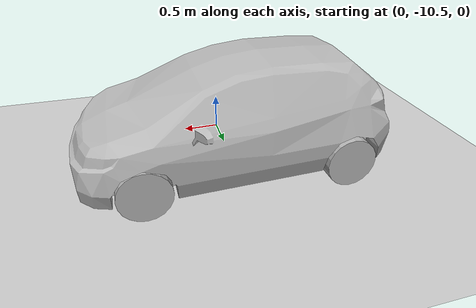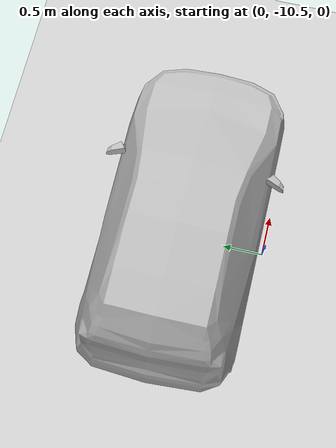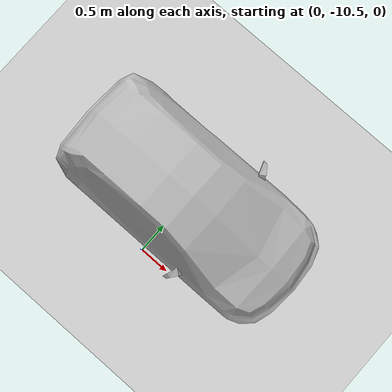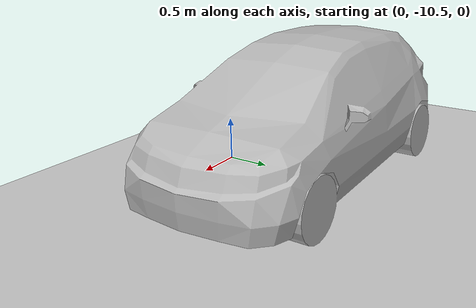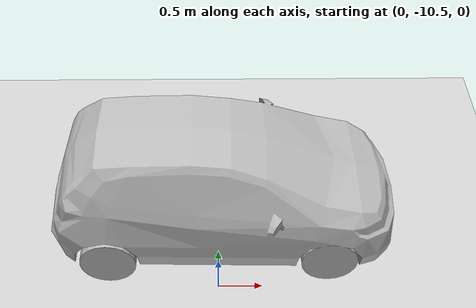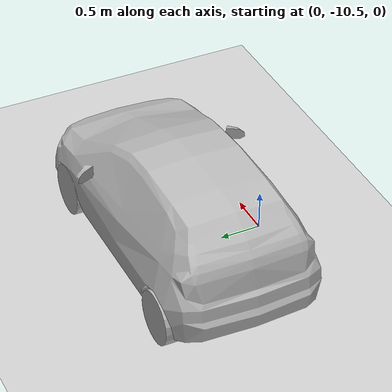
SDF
<?xml version="1.0"?>
<sdf version="1.6">
  <world name="default">
    <plugin
      filename="gz-sim-physics-system"
      name="gz::sim::systems::Physics">
    </plugin>
    <plugin
      filename="gz-sim-user-commands-system"
      name="gz::sim::systems::UserCommands">
    </plugin>
    <plugin
      filename="gz-sim-scene-broadcaster-system"
      name="gz::sim::systems::SceneBroadcaster">
    </plugin>
    <plugin
      filename="gz-sim-sensors-system"
      name="gz::sim::systems::Sensors">
      <render_engine>ogre2</render_engine>
    </plugin>
    <plugin
      filename="gz-sim-imu-system"
      name="gz::sim::systems::Imu">
    </plugin>

    <include>
      <uri>
        https://fuel.gazebosim.org/1.0/OpenRobotics/models/Ground Plane
      </uri>
    </include>

    <include>
      <uri>
        https://fuel.gazebosim.org/1.0/OpenRobotics/models/Sun
      </uri>
    </include>

    <scene>
      <ambient>0.5 0.5 0.5 1.0</ambient>
      <background>0.5 0.5 0.5 1.0</background>
      <grid>true</grid>
      <shadow>false</shadow>
    </scene>

    <gui fullscreen='0'>
      <camera name='user_camera'>
        <pose frame=''>0.319654 -0.235002 9.29441 0 1.5138 0.009599</pose>
        <view_controller>orbit</view_controller>
        <projection_type>perspective</projection_type>
      </camera>
    </gui>

    <physics type="ode">
      <real_time_update_rate>1000.0</real_time_update_rate>
      <max_step_size>0.001</max_step_size>
      <real_time_factor>1</real_time_factor>
      <ode>
        <solver>
          <type>quick</type>
          <iters>150</iters>
          <precon_iters>0</precon_iters>
          <sor>1.400000</sor>
          <use_dynamic_moi_rescaling>1</use_dynamic_moi_rescaling>
        </solver>
        <constraints>
          <cfm>0.00001</cfm>
          <erp>0.2</erp>
          <contact_max_correcting_vel>2000.000000</contact_max_correcting_vel>
          <contact_surface_layer>0.01000</contact_surface_layer>
        </constraints>
      </ode>
    </physics>

    <model name='Hatchback'>
      <include>
        <uri>model://hatchback_blue</uri>
      </include>
      <pose>-0.276098 -9.481944 0.023266 0 0 0</pose>
      <static>true</static>
    </model>
  </world>
</sdf>

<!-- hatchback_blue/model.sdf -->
<sdf version="1.6">
  <model name="hatchback_blue">
    <link name="link">
      <collision name="collision">
        <pose>0 0 0 0 0 1.57079632679</pose>
        <geometry>
          <mesh>
            <scale>0.0254 0.0254 0.0254</scale>
            <uri>model://hatchback_blue/meshes/hatchback.obj</uri>
          </mesh>
        </geometry>
      </collision>
      <visual name="visual">
        <pose>0 0 0 0 0 1.57079632679</pose>
        <geometry>
          <mesh>
            <scale>0.0254 0.0254 0.0254</scale>
            <uri>model://hatchback_blue/meshes/hatchback.obj</uri>
          </mesh>
        </geometry>
      </visual>
    </link>
  </model>
</sdf>
